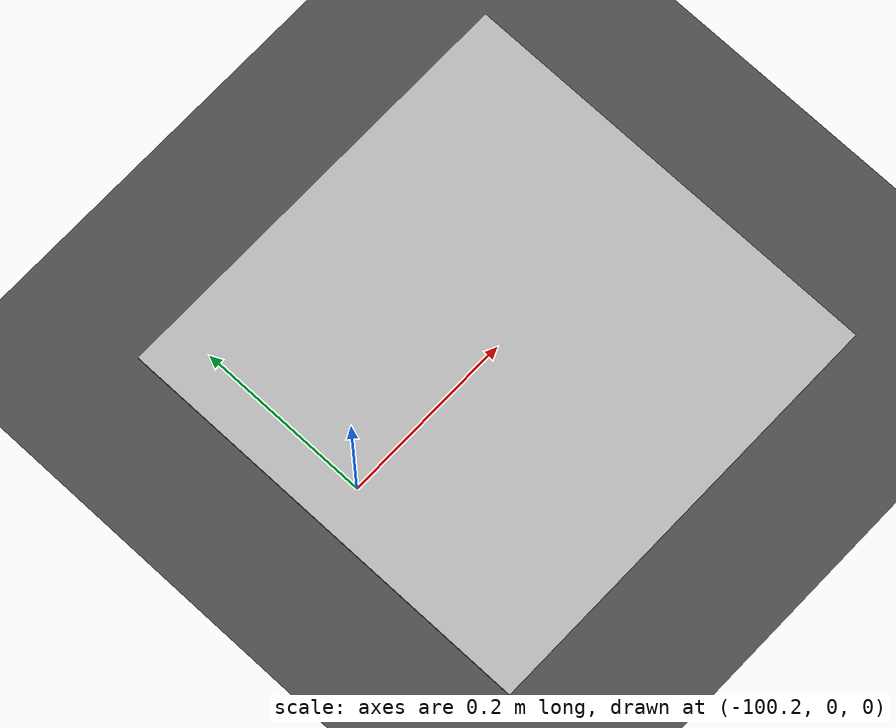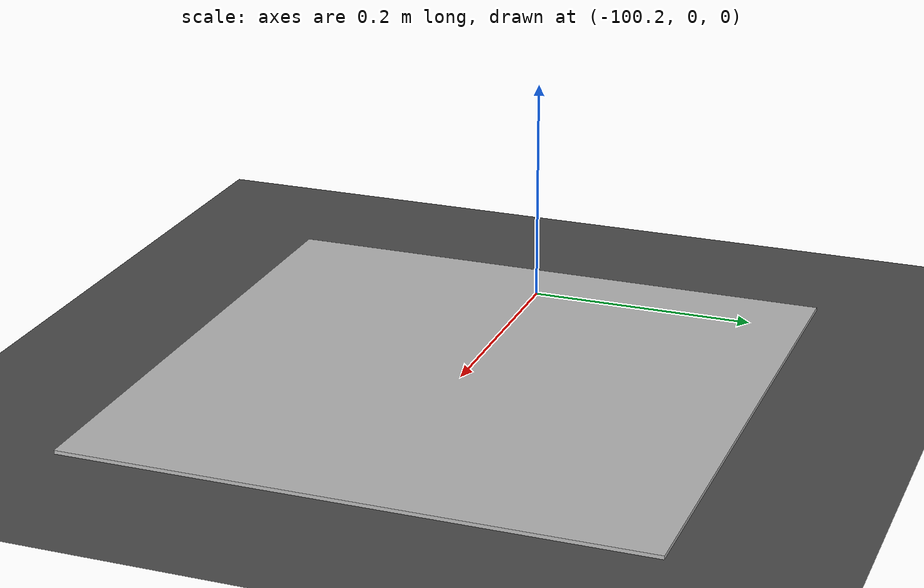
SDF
<?xml version="1.0" ?>
<sdf version="1.5">
  <world name="default">
    <!-- A global light source -->
    <include>
      <uri>model://sun</uri>
    </include>

    <gui>
      <camera name="user_camera">
        <!-- x, y, z 위치 및 롤, 피치, 요 -->
        <pose>-1 -10 1.5 0 0 1.5708</pose>
        <view_controller>orbit</view_controller>
      </camera>
    </gui>

    <model name="asphalt_plane">
      <static>1</static>
      <link name='link'>
        <collision name='collision'>
          <geometry>
            <plane>
              <normal>0 0 1</normal>
              <size>400 20</size>
            </plane>
          </geometry>
          <surface>
            <contact>
              <collide_bitmask>65535</collide_bitmask>
              <ode/>
            </contact>
            <friction>
              <ode>
                <mu>100</mu>
                <mu2>50</mu2>
              </ode>
              <torsional>
                <ode/>
              </torsional>
            </friction>
            <bounce/>
          </surface>
          <max_contacts>10</max_contacts>
        </collision>
        <visual name='visual'>
          <cast_shadows>0</cast_shadows>
          <geometry>
            <plane>
              <normal>0 0 1</normal>
              <size>500 20</size>
            </plane>
          </geometry>
          <material>
            <script>
              <uri>model://asphalt_plane/materials/scripts</uri>
              <uri>model://asphalt_plane/materials/textures</uri>
              <name>asphalt_plane</name>
            </script>
          </material>
        </visual>
        <self_collide>0</self_collide>
        <enable_wind>0</enable_wind>
        <kinematic>0</kinematic>
      </link>
    </model>

    <physics name='default_physics' default='0' type='ode'>
      <gravity>0 0 -9.8066</gravity>
      <ode>
        <solver>
          <type>quick</type>
          <iters>50</iters>
          <sor>1.0</sor>
          <use_dynamic_moi_rescaling>0</use_dynamic_moi_rescaling>
        </solver>
        <constraints>
          <cfm>0</cfm>
          <erp>0.2</erp>
          <contact_max_correcting_vel>100</contact_max_correcting_vel>
          <contact_surface_layer>0.001</contact_surface_layer>
        </constraints>
      </ode>
      <max_step_size>0.004</max_step_size>
      <real_time_factor>1</real_time_factor>
      <real_time_update_rate>250</real_time_update_rate>
      <gravity>0 0 -9.8066</gravity>
      <magnetic_field>6.0e-6 2.3e-5 -4.2e-5</magnetic_field>
      <atmosphere type='adiabatic'/>
    </physics>
    <spherical_coordinates>
      <surface_model>EARTH_WGS84</surface_model>
      <latitude_deg>0</latitude_deg>
      <longitude_deg>0</longitude_deg>
      <elevation>0</elevation>
      <heading_deg>0</heading_deg>
    </spherical_coordinates>

    <model name='FRACTAL_4L_6'>
      <link name='fractal_marker_link'>
        <pose frame=''>-100 0 0 0 -0 0</pose>
        <visual name='fractal_marker'>
          <geometry>
            <box>
              <size>0.5 0.5 0.005</size>
            </box>
          </geometry>
          <material>
            <script>
              <uri>model://FRACTAL_4L_6/materials/scripts</uri>
              <uri>model://FRACTAL_4L_6/materials/textures</uri>
              <name>FRACTAL_4L_6</name>
            </script>
          </material>
        </visual>
        <self_collide>0</self_collide>
        <enable_wind>0</enable_wind>
        <kinematic>0</kinematic>
      </link>
      <static>1</static>
    </model>

    <plugin name='wind_plugin' filename='libgazebo_wind_plugin.so'>
      <frameId>base_link</frameId>
      <robotNamespace/>
      <windPubTopic>world_wind</windPubTopic>
      <windVelocityMean>0.5</windVelocityMean>
      <windVelocityMax>1.5</windVelocityMax>
      <windVelocityVariance>0.3</windVelocityVariance>
      <windDirectionMean>0.707 0.707 0</windDirectionMean>
      <windDirectionVariance>0.2</windDirectionVariance>
    </plugin>
  </world>
</sdf>
